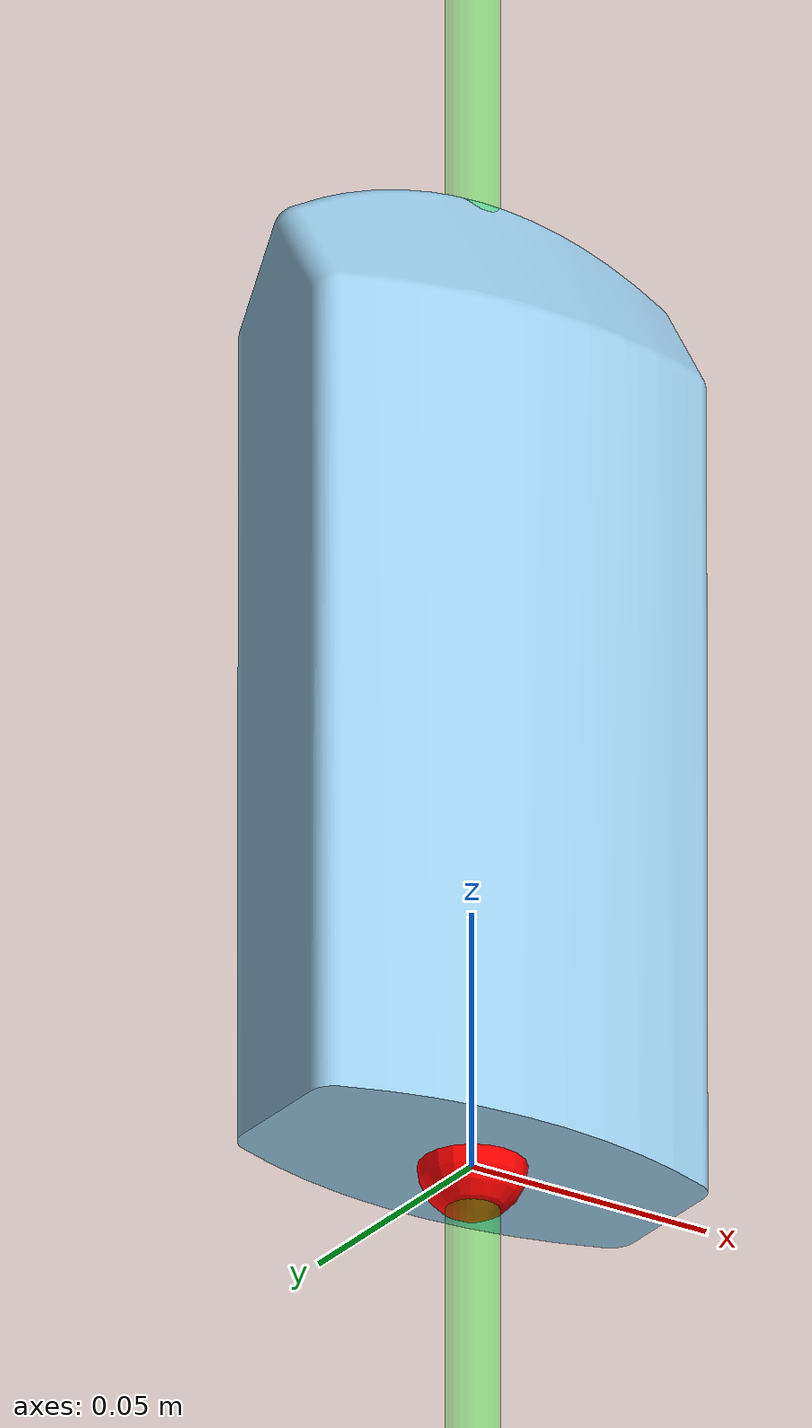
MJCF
<mujoco model="onshape">
    <compiler angle="radian" meshdir="./" />
    <size njmax="500" nconmax="100" />
    <asset>
        <mesh name="part_1" file="forearm_gripper.stl" />
    </asset>
    <worldbody>
    	<body>
            <geom quat="-0.707105 0.707108 -0.707105 0.707108" type="mesh" contype="0" conaffinity="0" group="1" rgba="0.615686 0.811765 0.929412 1" mesh="part_1" />
            <geom quat="-0.707105 0.707108 -0.707105 0.707108" type="mesh" mesh="part_1" group="0" name="forearm_collider" solimp="0.9 0.95 0.001 0.5 2" solmix="10000" solref="0.02 1" rgba="0.25 0.25 0.25 1" friction="0.001 0.005 0.0001"/>
            <site name="grip_site" pos="0 0 0" size="0.01 0.01 0.01" rgba="1 0 0 0.5" type="sphere" group="1"/>
            <site name="grip_site_cylinder" pos="0 0 0" size="0.005 10" rgba="0 1 0 0.3" type="cylinder" group="1"/>
            <site name="ft_frame" pos="0 0 0" size="0.01 0.01 0.01" rgba="1 0 0 1" type="sphere" group="1"/>
        </body>
    </worldbody>
    <sensor>
        <force name="force_ee" site="ft_frame"/>
        <torque name="torque_ee" site="ft_frame"/>
    </sensor>
</mujoco>
